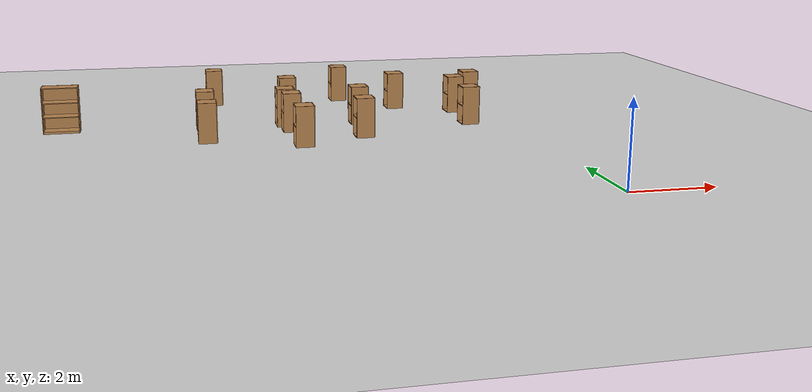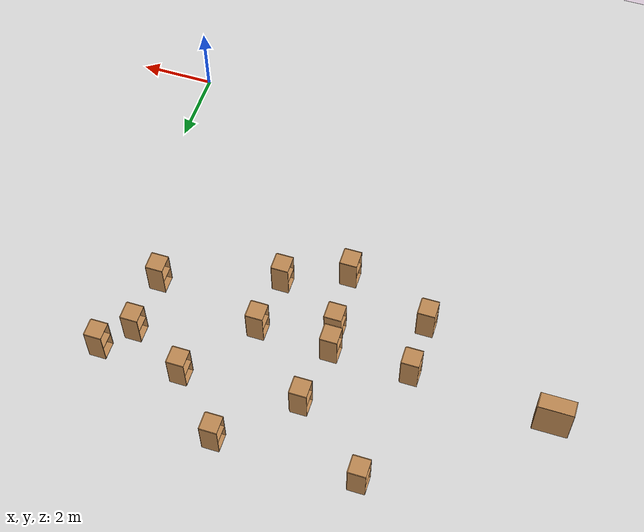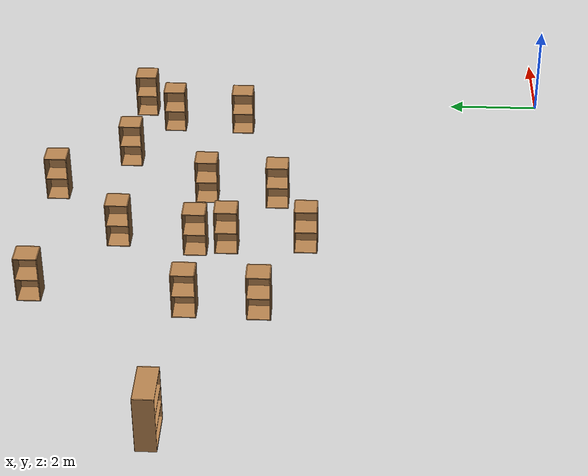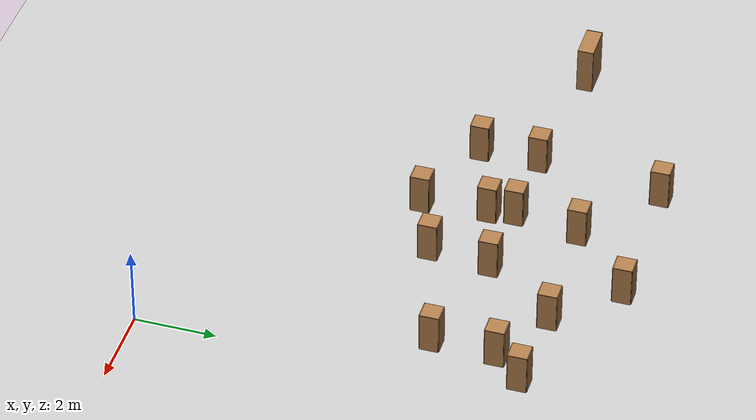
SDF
<sdf version="1.6">
 <world name="default">
  <model name="ground_plane">
   <static>1</static>
   <link name="link">
    <collision name="collision">
     <geometry><plane><normal>0 0 1</normal><size>100 100</size></plane></geometry>
     <surface><friction><ode><mu>100</mu><mu2>50</mu2></ode></friction></surface>
    </collision>
    <visual name="visual">
     <cast_shadows>0</cast_shadows>
     <geometry><plane><normal>0 0 1</normal><size>100 100</size></plane></geometry>
     <material>
      <script><uri>file://media/materials/scripts/gazebo.material</uri><name>Gazebo/Grey</name></script>
     </material>
    </visual>
   </link>
  </model>
  <model name="cabinet_2">
   <static>1</static>
   <link name="cabinet_bottom_plate">
    <inertial>
     <pose>0 0 -1 0 -0 0</pose>
     <inertia><ixx>2.05</ixx><ixy>0</ixy><ixz>0</ixz><iyy>2.05</iyy><iyz>0</iyz><izz>2.05</izz></inertia>
     <mass>25</mass>
    </inertial>
    <collision name="cabinet_bottom_plate_geom">
     <pose>0 0 0.01 0 -0 0</pose>
     <geometry><box><size>0.45 0.45 0.02</size></box></geometry>
    </collision>
    <visual name="cabinet_bottom_plate_geom_visual">
     <pose>0 0 0.01 0 -0 0</pose>
     <geometry><box><size>0.45 0.45 0.02</size></box></geometry>
     <material>
      <script><uri>file://media/materials/scripts/gazebo.material</uri><name>Gazebo/Wood</name></script>
     </material>
    </visual>
    <collision name="cabinet_bottom_plate_geom_cabinet_back_plate">
     <pose>0.235 0 0.51 0 -0 0</pose>
     <geometry><box><size>0.02 0.45 1.02</size></box></geometry>
    </collision>
    <visual name="cabinet_bottom_plate_geom_cabinet_back_plate_visual">
     <pose>0.235 0 0.51 0 -0 0</pose>
     <geometry><box><size>0.02 0.45 1.02</size></box></geometry>
     <material>
      <script><uri>file://media/materials/scripts/gazebo.material</uri><name>Gazebo/Wood</name></script>
     </material>
    </visual>
    <collision name="cabinet_bottom_plate_geom_cabinet_left_plate">
     <pose>0 0.235 0.51 0 -0 0</pose>
     <geometry><box><size>0.45 0.02 1.02</size></box></geometry>
    </collision>
    <visual name="cabinet_bottom_plate_geom_cabinet_left_plate_visual">
     <pose>0 0.235 0.51 0 -0 0</pose>
     <geometry><box><size>0.45 0.02 1.02</size></box></geometry>
     <material>
      <script><uri>file://media/materials/scripts/gazebo.material</uri><name>Gazebo/Wood</name></script>
     </material>
    </visual>
    <collision name="cabinet_bottom_plate_geom_cabinet_middle_plate">
     <pose>0 0 0.51 0 -0 0</pose>
     <geometry><box><size>0.45 0.45 0.02</size></box></geometry>
    </collision>
    <visual name="cabinet_bottom_plate_geom_cabinet_middle_plate_visual">
     <pose>0 0 0.51 0 -0 0</pose>
     <geometry><box><size>0.45 0.45 0.02</size></box></geometry>
     <material>
      <script><uri>file://media/materials/scripts/gazebo.material</uri><name>Gazebo/Wood</name></script>
     </material>
    </visual>
    <collision name="cabinet_bottom_plate_geom_cabinet_right_plate">
     <pose>0 -0.235 0.51 0 -0 0</pose>
     <geometry><box><size>0.45 0.02 1.02</size></box></geometry>
    </collision>
    <visual name="cabinet_bottom_plate_geom_cabinet_right_plate_visual">
     <pose>0 -0.235 0.51 0 -0 0</pose>
     <geometry><box><size>0.45 0.02 1.02</size></box></geometry>
     <material>
      <script><uri>file://media/materials/scripts/gazebo.material</uri><name>Gazebo/Wood</name></script>
     </material>
    </visual>
    <collision name="cabinet_bottom_plate_geom_cabinet_top_plate">
     <pose>0 0 1.01 0 -0 0</pose>
     <geometry><box><size>0.45 0.45 0.02</size></box></geometry>
    </collision>
    <visual name="cabinet_bottom_plate_geom_cabinet_top_plate_visual">
     <pose>0 0 1.01 0 -0 0</pose>
     <geometry><box><size>0.45 0.45 0.02</size></box></geometry>
     <material>
      <script><uri>file://media/materials/scripts/gazebo.material</uri><name>Gazebo/Wood</name></script>
     </material>
    </visual>
   </link>
   <pose>-0.469845 9.15683 0 0 -0 0</pose>
  </model>
  <model name="cabinet_3">
   <static>1</static>
   <link name="cabinet_bottom_plate">
    <inertial>
     <pose>0 0 -1 0 -0 0</pose>
     <inertia><ixx>2.05</ixx><ixy>0</ixy><ixz>0</ixz><iyy>2.05</iyy><iyz>0</iyz><izz>2.05</izz></inertia>
     <mass>25</mass>
    </inertial>
    <collision name="cabinet_bottom_plate_geom">
     <pose>0 0 0.01 0 -0 0</pose>
     <geometry><box><size>0.45 0.45 0.02</size></box></geometry>
    </collision>
    <visual name="cabinet_bottom_plate_geom_visual">
     <pose>0 0 0.01 0 -0 0</pose>
     <geometry><box><size>0.45 0.45 0.02</size></box></geometry>
     <material>
      <script><uri>file://media/materials/scripts/gazebo.material</uri><name>Gazebo/Wood</name></script>
     </material>
    </visual>
    <collision name="cabinet_bottom_plate_geom_cabinet_back_plate">
     <pose>0.235 0 0.51 0 -0 0</pose>
     <geometry><box><size>0.02 0.45 1.02</size></box></geometry>
    </collision>
    <visual name="cabinet_bottom_plate_geom_cabinet_back_plate_visual">
     <pose>0.235 0 0.51 0 -0 0</pose>
     <geometry><box><size>0.02 0.45 1.02</size></box></geometry>
     <material>
      <script><uri>file://media/materials/scripts/gazebo.material</uri><name>Gazebo/Wood</name></script>
     </material>
    </visual>
    <collision name="cabinet_bottom_plate_geom_cabinet_left_plate">
     <pose>0 0.235 0.51 0 -0 0</pose>
     <geometry><box><size>0.45 0.02 1.02</size></box></geometry>
    </collision>
    <visual name="cabinet_bottom_plate_geom_cabinet_left_plate_visual">
     <pose>0 0.235 0.51 0 -0 0</pose>
     <geometry><box><size>0.45 0.02 1.02</size></box></geometry>
     <material>
      <script><uri>file://media/materials/scripts/gazebo.material</uri><name>Gazebo/Wood</name></script>
     </material>
    </visual>
    <collision name="cabinet_bottom_plate_geom_cabinet_middle_plate">
     <pose>0 0 0.51 0 -0 0</pose>
     <geometry><box><size>0.45 0.45 0.02</size></box></geometry>
    </collision>
    <visual name="cabinet_bottom_plate_geom_cabinet_middle_plate_visual">
     <pose>0 0 0.51 0 -0 0</pose>
     <geometry><box><size>0.45 0.45 0.02</size></box></geometry>
     <material>
      <script><uri>file://media/materials/scripts/gazebo.material</uri><name>Gazebo/Wood</name></script>
     </material>
    </visual>
    <collision name="cabinet_bottom_plate_geom_cabinet_right_plate">
     <pose>0 -0.235 0.51 0 -0 0</pose>
     <geometry><box><size>0.45 0.02 1.02</size></box></geometry>
    </collision>
    <visual name="cabinet_bottom_plate_geom_cabinet_right_plate_visual">
     <pose>0 -0.235 0.51 0 -0 0</pose>
     <geometry><box><size>0.45 0.02 1.02</size></box></geometry>
     <material>
      <script><uri>file://media/materials/scripts/gazebo.material</uri><name>Gazebo/Wood</name></script>
     </material>
    </visual>
    <collision name="cabinet_bottom_plate_geom_cabinet_top_plate">
     <pose>0 0 1.01 0 -0 0</pose>
     <geometry><box><size>0.45 0.45 0.02</size></box></geometry>
    </collision>
    <visual name="cabinet_bottom_plate_geom_cabinet_top_plate_visual">
     <pose>0 0 1.01 0 -0 0</pose>
     <geometry><box><size>0.45 0.45 0.02</size></box></geometry>
     <material>
      <script><uri>file://media/materials/scripts/gazebo.material</uri><name>Gazebo/Wood</name></script>
     </material>
    </visual>
   </link>
   <pose>-2.69733 9.26141 0 0 -0 0</pose>
  </model>
  <model name="cabinet_4">
   <static>1</static>
   <link name="cabinet_bottom_plate">
    <inertial>
     <pose>0 0 -1 0 -0 0</pose>
     <inertia><ixx>2.05</ixx><ixy>0</ixy><ixz>0</ixz><iyy>2.05</iyy><iyz>0</iyz><izz>2.05</izz></inertia>
     <mass>25</mass>
    </inertial>
    <collision name="cabinet_bottom_plate_geom">
     <pose>0 0 0.01 0 -0 0</pose>
     <geometry><box><size>0.45 0.45 0.02</size></box></geometry>
    </collision>
    <visual name="cabinet_bottom_plate_geom_visual">
     <pose>0 0 0.01 0 -0 0</pose>
     <geometry><box><size>0.45 0.45 0.02</size></box></geometry>
     <material>
      <script><uri>file://media/materials/scripts/gazebo.material</uri><name>Gazebo/Wood</name></script>
     </material>
    </visual>
    <collision name="cabinet_bottom_plate_geom_cabinet_back_plate">
     <pose>0.235 0 0.51 0 -0 0</pose>
     <geometry><box><size>0.02 0.45 1.02</size></box></geometry>
    </collision>
    <visual name="cabinet_bottom_plate_geom_cabinet_back_plate_visual">
     <pose>0.235 0 0.51 0 -0 0</pose>
     <geometry><box><size>0.02 0.45 1.02</size></box></geometry>
     <material>
      <script><uri>file://media/materials/scripts/gazebo.material</uri><name>Gazebo/Wood</name></script>
     </material>
    </visual>
    <collision name="cabinet_bottom_plate_geom_cabinet_left_plate">
     <pose>0 0.235 0.51 0 -0 0</pose>
     <geometry><box><size>0.45 0.02 1.02</size></box></geometry>
    </collision>
    <visual name="cabinet_bottom_plate_geom_cabinet_left_plate_visual">
     <pose>0 0.235 0.51 0 -0 0</pose>
     <geometry><box><size>0.45 0.02 1.02</size></box></geometry>
     <material>
      <script><uri>file://media/materials/scripts/gazebo.material</uri><name>Gazebo/Wood</name></script>
     </material>
    </visual>
    <collision name="cabinet_bottom_plate_geom_cabinet_middle_plate">
     <pose>0 0 0.51 0 -0 0</pose>
     <geometry><box><size>0.45 0.45 0.02</size></box></geometry>
    </collision>
    <visual name="cabinet_bottom_plate_geom_cabinet_middle_plate_visual">
     <pose>0 0 0.51 0 -0 0</pose>
     <geometry><box><size>0.45 0.45 0.02</size></box></geometry>
     <material>
      <script><uri>file://media/materials/scripts/gazebo.material</uri><name>Gazebo/Wood</name></script>
     </material>
    </visual>
    <collision name="cabinet_bottom_plate_geom_cabinet_right_plate">
     <pose>0 -0.235 0.51 0 -0 0</pose>
     <geometry><box><size>0.45 0.02 1.02</size></box></geometry>
    </collision>
    <visual name="cabinet_bottom_plate_geom_cabinet_right_plate_visual">
     <pose>0 -0.235 0.51 0 -0 0</pose>
     <geometry><box><size>0.45 0.02 1.02</size></box></geometry>
     <material>
      <script><uri>file://media/materials/scripts/gazebo.material</uri><name>Gazebo/Wood</name></script>
     </material>
    </visual>
    <collision name="cabinet_bottom_plate_geom_cabinet_top_plate">
     <pose>0 0 1.01 0 -0 0</pose>
     <geometry><box><size>0.45 0.45 0.02</size></box></geometry>
    </collision>
    <visual name="cabinet_bottom_plate_geom_cabinet_top_plate_visual">
     <pose>0 0 1.01 0 -0 0</pose>
     <geometry><box><size>0.45 0.45 0.02</size></box></geometry>
     <material>
      <script><uri>file://media/materials/scripts/gazebo.material</uri><name>Gazebo/Wood</name></script>
     </material>
    </visual>
   </link>
   <pose>-4.09247 10.6947 0 0 -0 0</pose>
  </model>
  <model name="cabinet_5">
   <static>1</static>
   <link name="cabinet_bottom_plate">
    <inertial>
     <pose>0 0 -1 0 -0 0</pose>
     <inertia><ixx>2.05</ixx><ixy>0</ixy><ixz>0</ixz><iyy>2.05</iyy><iyz>0</iyz><izz>2.05</izz></inertia>
     <mass>25</mass>
    </inertial>
    <collision name="cabinet_bottom_plate_geom">
     <pose>0 0 0.01 0 -0 0</pose>
     <geometry><box><size>0.45 0.45 0.02</size></box></geometry>
    </collision>
    <visual name="cabinet_bottom_plate_geom_visual">
     <pose>0 0 0.01 0 -0 0</pose>
     <geometry><box><size>0.45 0.45 0.02</size></box></geometry>
     <material>
      <script><uri>file://media/materials/scripts/gazebo.material</uri><name>Gazebo/Wood</name></script>
     </material>
    </visual>
    <collision name="cabinet_bottom_plate_geom_cabinet_back_plate">
     <pose>0.235 0 0.51 0 -0 0</pose>
     <geometry><box><size>0.02 0.45 1.02</size></box></geometry>
    </collision>
    <visual name="cabinet_bottom_plate_geom_cabinet_back_plate_visual">
     <pose>0.235 0 0.51 0 -0 0</pose>
     <geometry><box><size>0.02 0.45 1.02</size></box></geometry>
     <material>
      <script><uri>file://media/materials/scripts/gazebo.material</uri><name>Gazebo/Wood</name></script>
     </material>
    </visual>
    <collision name="cabinet_bottom_plate_geom_cabinet_left_plate">
     <pose>0 0.235 0.51 0 -0 0</pose>
     <geometry><box><size>0.45 0.02 1.02</size></box></geometry>
    </collision>
    <visual name="cabinet_bottom_plate_geom_cabinet_left_plate_visual">
     <pose>0 0.235 0.51 0 -0 0</pose>
     <geometry><box><size>0.45 0.02 1.02</size></box></geometry>
     <material>
      <script><uri>file://media/materials/scripts/gazebo.material</uri><name>Gazebo/Wood</name></script>
     </material>
    </visual>
    <collision name="cabinet_bottom_plate_geom_cabinet_middle_plate">
     <pose>0 0 0.51 0 -0 0</pose>
     <geometry><box><size>0.45 0.45 0.02</size></box></geometry>
    </collision>
    <visual name="cabinet_bottom_plate_geom_cabinet_middle_plate_visual">
     <pose>0 0 0.51 0 -0 0</pose>
     <geometry><box><size>0.45 0.45 0.02</size></box></geometry>
     <material>
      <script><uri>file://media/materials/scripts/gazebo.material</uri><name>Gazebo/Wood</name></script>
     </material>
    </visual>
    <collision name="cabinet_bottom_plate_geom_cabinet_right_plate">
     <pose>0 -0.235 0.51 0 -0 0</pose>
     <geometry><box><size>0.45 0.02 1.02</size></box></geometry>
    </collision>
    <visual name="cabinet_bottom_plate_geom_cabinet_right_plate_visual">
     <pose>0 -0.235 0.51 0 -0 0</pose>
     <geometry><box><size>0.45 0.02 1.02</size></box></geometry>
     <material>
      <script><uri>file://media/materials/scripts/gazebo.material</uri><name>Gazebo/Wood</name></script>
     </material>
    </visual>
    <collision name="cabinet_bottom_plate_geom_cabinet_top_plate">
     <pose>0 0 1.01 0 -0 0</pose>
     <geometry><box><size>0.45 0.45 0.02</size></box></geometry>
    </collision>
    <visual name="cabinet_bottom_plate_geom_cabinet_top_plate_visual">
     <pose>0 0 1.01 0 -0 0</pose>
     <geometry><box><size>0.45 0.45 0.02</size></box></geometry>
     <material>
      <script><uri>file://media/materials/scripts/gazebo.material</uri><name>Gazebo/Wood</name></script>
     </material>
    </visual>
   </link>
   <pose>-5.83195 9.14808 0 0 -0 0</pose>
  </model>
  <model name="cabinet_6">
   <static>1</static>
   <link name="cabinet_bottom_plate">
    <inertial>
     <pose>0 0 -1 0 -0 0</pose>
     <inertia><ixx>2.05</ixx><ixy>0</ixy><ixz>0</ixz><iyy>2.05</iyy><iyz>0</iyz><izz>2.05</izz></inertia>
     <mass>25</mass>
    </inertial>
    <collision name="cabinet_bottom_plate_geom">
     <pose>0 0 0.01 0 -0 0</pose>
     <geometry><box><size>0.45 0.45 0.02</size></box></geometry>
    </collision>
    <visual name="cabinet_bottom_plate_geom_visual">
     <pose>0 0 0.01 0 -0 0</pose>
     <geometry><box><size>0.45 0.45 0.02</size></box></geometry>
     <material>
      <script><uri>file://media/materials/scripts/gazebo.material</uri><name>Gazebo/Wood</name></script>
     </material>
    </visual>
    <collision name="cabinet_bottom_plate_geom_cabinet_back_plate">
     <pose>0.235 0 0.51 0 -0 0</pose>
     <geometry><box><size>0.02 0.45 1.02</size></box></geometry>
    </collision>
    <visual name="cabinet_bottom_plate_geom_cabinet_back_plate_visual">
     <pose>0.235 0 0.51 0 -0 0</pose>
     <geometry><box><size>0.02 0.45 1.02</size></box></geometry>
     <material>
      <script><uri>file://media/materials/scripts/gazebo.material</uri><name>Gazebo/Wood</name></script>
     </material>
    </visual>
    <collision name="cabinet_bottom_plate_geom_cabinet_left_plate">
     <pose>0 0.235 0.51 0 -0 0</pose>
     <geometry><box><size>0.45 0.02 1.02</size></box></geometry>
    </collision>
    <visual name="cabinet_bottom_plate_geom_cabinet_left_plate_visual">
     <pose>0 0.235 0.51 0 -0 0</pose>
     <geometry><box><size>0.45 0.02 1.02</size></box></geometry>
     <material>
      <script><uri>file://media/materials/scripts/gazebo.material</uri><name>Gazebo/Wood</name></script>
     </material>
    </visual>
    <collision name="cabinet_bottom_plate_geom_cabinet_middle_plate">
     <pose>0 0 0.51 0 -0 0</pose>
     <geometry><box><size>0.45 0.45 0.02</size></box></geometry>
    </collision>
    <visual name="cabinet_bottom_plate_geom_cabinet_middle_plate_visual">
     <pose>0 0 0.51 0 -0 0</pose>
     <geometry><box><size>0.45 0.45 0.02</size></box></geometry>
     <material>
      <script><uri>file://media/materials/scripts/gazebo.material</uri><name>Gazebo/Wood</name></script>
     </material>
    </visual>
    <collision name="cabinet_bottom_plate_geom_cabinet_right_plate">
     <pose>0 -0.235 0.51 0 -0 0</pose>
     <geometry><box><size>0.45 0.02 1.02</size></box></geometry>
    </collision>
    <visual name="cabinet_bottom_plate_geom_cabinet_right_plate_visual">
     <pose>0 -0.235 0.51 0 -0 0</pose>
     <geometry><box><size>0.45 0.02 1.02</size></box></geometry>
     <material>
      <script><uri>file://media/materials/scripts/gazebo.material</uri><name>Gazebo/Wood</name></script>
     </material>
    </visual>
    <collision name="cabinet_bottom_plate_geom_cabinet_top_plate">
     <pose>0 0 1.01 0 -0 0</pose>
     <geometry><box><size>0.45 0.45 0.02</size></box></geometry>
    </collision>
    <visual name="cabinet_bottom_plate_geom_cabinet_top_plate_visual">
     <pose>0 0 1.01 0 -0 0</pose>
     <geometry><box><size>0.45 0.45 0.02</size></box></geometry>
     <material>
      <script><uri>file://media/materials/scripts/gazebo.material</uri><name>Gazebo/Wood</name></script>
     </material>
    </visual>
   </link>
   <pose>-7.78731 10.6921 0 0 -0 0</pose>
  </model>
  <model name="cabinet_11">
   <static>1</static>
   <link name="cabinet_bottom_plate">
    <inertial>
     <pose>0 0 -1 0 -0 0</pose>
     <inertia><ixx>2.05</ixx><ixy>0</ixy><ixz>0</ixz><iyy>2.05</iyy><iyz>0</iyz><izz>2.05</izz></inertia>
     <mass>25</mass>
    </inertial>
    <collision name="cabinet_bottom_plate_geom">
     <pose>0 0 0.01 0 -0 0</pose>
     <geometry><box><size>0.45 0.45 0.02</size></box></geometry>
    </collision>
    <visual name="cabinet_bottom_plate_geom_visual">
     <pose>0 0 0.01 0 -0 0</pose>
     <geometry><box><size>0.45 0.45 0.02</size></box></geometry>
     <material>
      <script><uri>file://media/materials/scripts/gazebo.material</uri><name>Gazebo/Wood</name></script>
     </material>
    </visual>
    <collision name="cabinet_bottom_plate_geom_cabinet_back_plate">
     <pose>0.235 0 0.51 0 -0 0</pose>
     <geometry><box><size>0.02 0.45 1.02</size></box></geometry>
    </collision>
    <visual name="cabinet_bottom_plate_geom_cabinet_back_plate_visual">
     <pose>0.235 0 0.51 0 -0 0</pose>
     <geometry><box><size>0.02 0.45 1.02</size></box></geometry>
     <material>
      <script><uri>file://media/materials/scripts/gazebo.material</uri><name>Gazebo/Wood</name></script>
     </material>
    </visual>
    <collision name="cabinet_bottom_plate_geom_cabinet_left_plate">
     <pose>0 0.235 0.51 0 -0 0</pose>
     <geometry><box><size>0.45 0.02 1.02</size></box></geometry>
    </collision>
    <visual name="cabinet_bottom_plate_geom_cabinet_left_plate_visual">
     <pose>0 0.235 0.51 0 -0 0</pose>
     <geometry><box><size>0.45 0.02 1.02</size></box></geometry>
     <material>
      <script><uri>file://media/materials/scripts/gazebo.material</uri><name>Gazebo/Wood</name></script>
     </material>
    </visual>
    <collision name="cabinet_bottom_plate_geom_cabinet_middle_plate">
     <pose>0 0 0.51 0 -0 0</pose>
     <geometry><box><size>0.45 0.45 0.02</size></box></geometry>
    </collision>
    <visual name="cabinet_bottom_plate_geom_cabinet_middle_plate_visual">
     <pose>0 0 0.51 0 -0 0</pose>
     <geometry><box><size>0.45 0.45 0.02</size></box></geometry>
     <material>
      <script><uri>file://media/materials/scripts/gazebo.material</uri><name>Gazebo/Wood</name></script>
     </material>
    </visual>
    <collision name="cabinet_bottom_plate_geom_cabinet_right_plate">
     <pose>0 -0.235 0.51 0 -0 0</pose>
     <geometry><box><size>0.45 0.02 1.02</size></box></geometry>
    </collision>
    <visual name="cabinet_bottom_plate_geom_cabinet_right_plate_visual">
     <pose>0 -0.235 0.51 0 -0 0</pose>
     <geometry><box><size>0.45 0.02 1.02</size></box></geometry>
     <material>
      <script><uri>file://media/materials/scripts/gazebo.material</uri><name>Gazebo/Wood</name></script>
     </material>
    </visual>
    <collision name="cabinet_bottom_plate_geom_cabinet_top_plate">
     <pose>0 0 1.01 0 -0 0</pose>
     <geometry><box><size>0.45 0.45 0.02</size></box></geometry>
    </collision>
    <visual name="cabinet_bottom_plate_geom_cabinet_top_plate_visual">
     <pose>0 0 1.01 0 -0 0</pose>
     <geometry><box><size>0.45 0.45 0.02</size></box></geometry>
     <material>
      <script><uri>file://media/materials/scripts/gazebo.material</uri><name>Gazebo/Wood</name></script>
     </material>
    </visual>
   </link>
   <pose>-1.14087 8.42958 0 0 -0 0</pose>
  </model>
  <model name="cabinet_12">
   <static>1</static>
   <link name="cabinet_bottom_plate">
    <inertial>
     <pose>0 0 -1 0 -0 0</pose>
     <inertia><ixx>2.05</ixx><ixy>0</ixy><ixz>0</ixz><iyy>2.05</iyy><iyz>0</iyz><izz>2.05</izz></inertia>
     <mass>25</mass>
    </inertial>
    <collision name="cabinet_bottom_plate_geom">
     <pose>0 0 0.01 0 -0 0</pose>
     <geometry><box><size>0.45 0.45 0.02</size></box></geometry>
    </collision>
    <visual name="cabinet_bottom_plate_geom_visual">
     <pose>0 0 0.01 0 -0 0</pose>
     <geometry><box><size>0.45 0.45 0.02</size></box></geometry>
     <material>
      <script><uri>file://media/materials/scripts/gazebo.material</uri><name>Gazebo/Wood</name></script>
     </material>
    </visual>
    <collision name="cabinet_bottom_plate_geom_cabinet_back_plate">
     <pose>0.235 0 0.51 0 -0 0</pose>
     <geometry><box><size>0.02 0.45 1.02</size></box></geometry>
    </collision>
    <visual name="cabinet_bottom_plate_geom_cabinet_back_plate_visual">
     <pose>0.235 0 0.51 0 -0 0</pose>
     <geometry><box><size>0.02 0.45 1.02</size></box></geometry>
     <material>
      <script><uri>file://media/materials/scripts/gazebo.material</uri><name>Gazebo/Wood</name></script>
     </material>
    </visual>
    <collision name="cabinet_bottom_plate_geom_cabinet_left_plate">
     <pose>0 0.235 0.51 0 -0 0</pose>
     <geometry><box><size>0.45 0.02 1.02</size></box></geometry>
    </collision>
    <visual name="cabinet_bottom_plate_geom_cabinet_left_plate_visual">
     <pose>0 0.235 0.51 0 -0 0</pose>
     <geometry><box><size>0.45 0.02 1.02</size></box></geometry>
     <material>
      <script><uri>file://media/materials/scripts/gazebo.material</uri><name>Gazebo/Wood</name></script>
     </material>
    </visual>
    <collision name="cabinet_bottom_plate_geom_cabinet_middle_plate">
     <pose>0 0 0.51 0 -0 0</pose>
     <geometry><box><size>0.45 0.45 0.02</size></box></geometry>
    </collision>
    <visual name="cabinet_bottom_plate_geom_cabinet_middle_plate_visual">
     <pose>0 0 0.51 0 -0 0</pose>
     <geometry><box><size>0.45 0.45 0.02</size></box></geometry>
     <material>
      <script><uri>file://media/materials/scripts/gazebo.material</uri><name>Gazebo/Wood</name></script>
     </material>
    </visual>
    <collision name="cabinet_bottom_plate_geom_cabinet_right_plate">
     <pose>0 -0.235 0.51 0 -0 0</pose>
     <geometry><box><size>0.45 0.02 1.02</size></box></geometry>
    </collision>
    <visual name="cabinet_bottom_plate_geom_cabinet_right_plate_visual">
     <pose>0 -0.235 0.51 0 -0 0</pose>
     <geometry><box><size>0.45 0.02 1.02</size></box></geometry>
     <material>
      <script><uri>file://media/materials/scripts/gazebo.material</uri><name>Gazebo/Wood</name></script>
     </material>
    </visual>
    <collision name="cabinet_bottom_plate_geom_cabinet_top_plate">
     <pose>0 0 1.01 0 -0 0</pose>
     <geometry><box><size>0.45 0.45 0.02</size></box></geometry>
    </collision>
    <visual name="cabinet_bottom_plate_geom_cabinet_top_plate_visual">
     <pose>0 0 1.01 0 -0 0</pose>
     <geometry><box><size>0.45 0.45 0.02</size></box></geometry>
     <material>
      <script><uri>file://media/materials/scripts/gazebo.material</uri><name>Gazebo/Wood</name></script>
     </material>
    </visual>
   </link>
   <pose>-4.11624 7.44312 0 0 -0 0</pose>
  </model>
  <model name="cabinet_13">
   <static>1</static>
   <link name="cabinet_bottom_plate">
    <inertial>
     <pose>0 0 -1 0 -0 0</pose>
     <inertia><ixx>2.05</ixx><ixy>0</ixy><ixz>0</ixz><iyy>2.05</iyy><iyz>0</iyz><izz>2.05</izz></inertia>
     <mass>25</mass>
    </inertial>
    <collision name="cabinet_bottom_plate_geom">
     <pose>0 0 0.01 0 -0 0</pose>
     <geometry><box><size>0.45 0.45 0.02</size></box></geometry>
    </collision>
    <visual name="cabinet_bottom_plate_geom_visual">
     <pose>0 0 0.01 0 -0 0</pose>
     <geometry><box><size>0.45 0.45 0.02</size></box></geometry>
     <material>
      <script><uri>file://media/materials/scripts/gazebo.material</uri><name>Gazebo/Wood</name></script>
     </material>
    </visual>
    <collision name="cabinet_bottom_plate_geom_cabinet_back_plate">
     <pose>0.235 0 0.51 0 -0 0</pose>
     <geometry><box><size>0.02 0.45 1.02</size></box></geometry>
    </collision>
    <visual name="cabinet_bottom_plate_geom_cabinet_back_plate_visual">
     <pose>0.235 0 0.51 0 -0 0</pose>
     <geometry><box><size>0.02 0.45 1.02</size></box></geometry>
     <material>
      <script><uri>file://media/materials/scripts/gazebo.material</uri><name>Gazebo/Wood</name></script>
     </material>
    </visual>
    <collision name="cabinet_bottom_plate_geom_cabinet_left_plate">
     <pose>0 0.235 0.51 0 -0 0</pose>
     <geometry><box><size>0.45 0.02 1.02</size></box></geometry>
    </collision>
    <visual name="cabinet_bottom_plate_geom_cabinet_left_plate_visual">
     <pose>0 0.235 0.51 0 -0 0</pose>
     <geometry><box><size>0.45 0.02 1.02</size></box></geometry>
     <material>
      <script><uri>file://media/materials/scripts/gazebo.material</uri><name>Gazebo/Wood</name></script>
     </material>
    </visual>
    <collision name="cabinet_bottom_plate_geom_cabinet_middle_plate">
     <pose>0 0 0.51 0 -0 0</pose>
     <geometry><box><size>0.45 0.45 0.02</size></box></geometry>
    </collision>
    <visual name="cabinet_bottom_plate_geom_cabinet_middle_plate_visual">
     <pose>0 0 0.51 0 -0 0</pose>
     <geometry><box><size>0.45 0.45 0.02</size></box></geometry>
     <material>
      <script><uri>file://media/materials/scripts/gazebo.material</uri><name>Gazebo/Wood</name></script>
     </material>
    </visual>
    <collision name="cabinet_bottom_plate_geom_cabinet_right_plate">
     <pose>0 -0.235 0.51 0 -0 0</pose>
     <geometry><box><size>0.45 0.02 1.02</size></box></geometry>
    </collision>
    <visual name="cabinet_bottom_plate_geom_cabinet_right_plate_visual">
     <pose>0 -0.235 0.51 0 -0 0</pose>
     <geometry><box><size>0.45 0.02 1.02</size></box></geometry>
     <material>
      <script><uri>file://media/materials/scripts/gazebo.material</uri><name>Gazebo/Wood</name></script>
     </material>
    </visual>
    <collision name="cabinet_bottom_plate_geom_cabinet_top_plate">
     <pose>0 0 1.01 0 -0 0</pose>
     <geometry><box><size>0.45 0.45 0.02</size></box></geometry>
    </collision>
    <visual name="cabinet_bottom_plate_geom_cabinet_top_plate_visual">
     <pose>0 0 1.01 0 -0 0</pose>
     <geometry><box><size>0.45 0.45 0.02</size></box></geometry>
     <material>
      <script><uri>file://media/materials/scripts/gazebo.material</uri><name>Gazebo/Wood</name></script>
     </material>
    </visual>
   </link>
   <pose>-6.09826 7.52006 0 0 -0 0</pose>
  </model>
  <model name="cabinet_14">
   <static>1</static>
   <link name="cabinet_bottom_plate">
    <inertial>
     <pose>0 0 -1 0 -0 0</pose>
     <inertia><ixx>2.05</ixx><ixy>0</ixy><ixz>0</ixz><iyy>2.05</iyy><iyz>0</iyz><izz>2.05</izz></inertia>
     <mass>25</mass>
    </inertial>
    <collision name="cabinet_bottom_plate_geom">
     <pose>0 0 0.01 0 -0 0</pose>
     <geometry><box><size>0.45 0.45 0.02</size></box></geometry>
    </collision>
    <visual name="cabinet_bottom_plate_geom_visual">
     <pose>0 0 0.01 0 -0 0</pose>
     <geometry><box><size>0.45 0.45 0.02</size></box></geometry>
     <material>
      <script><uri>file://media/materials/scripts/gazebo.material</uri><name>Gazebo/Wood</name></script>
     </material>
    </visual>
    <collision name="cabinet_bottom_plate_geom_cabinet_back_plate">
     <pose>0.235 0 0.51 0 -0 0</pose>
     <geometry><box><size>0.02 0.45 1.02</size></box></geometry>
    </collision>
    <visual name="cabinet_bottom_plate_geom_cabinet_back_plate_visual">
     <pose>0.235 0 0.51 0 -0 0</pose>
     <geometry><box><size>0.02 0.45 1.02</size></box></geometry>
     <material>
      <script><uri>file://media/materials/scripts/gazebo.material</uri><name>Gazebo/Wood</name></script>
     </material>
    </visual>
    <collision name="cabinet_bottom_plate_geom_cabinet_left_plate">
     <pose>0 0.235 0.51 0 -0 0</pose>
     <geometry><box><size>0.45 0.02 1.02</size></box></geometry>
    </collision>
    <visual name="cabinet_bottom_plate_geom_cabinet_left_plate_visual">
     <pose>0 0.235 0.51 0 -0 0</pose>
     <geometry><box><size>0.45 0.02 1.02</size></box></geometry>
     <material>
      <script><uri>file://media/materials/scripts/gazebo.material</uri><name>Gazebo/Wood</name></script>
     </material>
    </visual>
    <collision name="cabinet_bottom_plate_geom_cabinet_middle_plate">
     <pose>0 0 0.51 0 -0 0</pose>
     <geometry><box><size>0.45 0.45 0.02</size></box></geometry>
    </collision>
    <visual name="cabinet_bottom_plate_geom_cabinet_middle_plate_visual">
     <pose>0 0 0.51 0 -0 0</pose>
     <geometry><box><size>0.45 0.45 0.02</size></box></geometry>
     <material>
      <script><uri>file://media/materials/scripts/gazebo.material</uri><name>Gazebo/Wood</name></script>
     </material>
    </visual>
    <collision name="cabinet_bottom_plate_geom_cabinet_right_plate">
     <pose>0 -0.235 0.51 0 -0 0</pose>
     <geometry><box><size>0.45 0.02 1.02</size></box></geometry>
    </collision>
    <visual name="cabinet_bottom_plate_geom_cabinet_right_plate_visual">
     <pose>0 -0.235 0.51 0 -0 0</pose>
     <geometry><box><size>0.45 0.02 1.02</size></box></geometry>
     <material>
      <script><uri>file://media/materials/scripts/gazebo.material</uri><name>Gazebo/Wood</name></script>
     </material>
    </visual>
    <collision name="cabinet_bottom_plate_geom_cabinet_top_plate">
     <pose>0 0 1.01 0 -0 0</pose>
     <geometry><box><size>0.45 0.45 0.02</size></box></geometry>
    </collision>
    <visual name="cabinet_bottom_plate_geom_cabinet_top_plate_visual">
     <pose>0 0 1.01 0 -0 0</pose>
     <geometry><box><size>0.45 0.45 0.02</size></box></geometry>
     <material>
      <script><uri>file://media/materials/scripts/gazebo.material</uri><name>Gazebo/Wood</name></script>
     </material>
    </visual>
   </link>
   <pose>-8.20424 7.5443 0 0 -0 0</pose>
  </model>
  <model name="cabinet_19">
   <static>1</static>
   <link name="cabinet_bottom_plate">
    <inertial>
     <pose>0 0 -1 0 -0 0</pose>
     <inertia><ixx>2.05</ixx><ixy>0</ixy><ixz>0</ixz><iyy>2.05</iyy><iyz>0</iyz><izz>2.05</izz></inertia>
     <mass>25</mass>
    </inertial>
    <collision name="cabinet_bottom_plate_geom">
     <pose>0 0 0.01 0 -0 0</pose>
     <geometry><box><size>0.45 0.45 0.02</size></box></geometry>
    </collision>
    <visual name="cabinet_bottom_plate_geom_visual">
     <pose>0 0 0.01 0 -0 0</pose>
     <geometry><box><size>0.45 0.45 0.02</size></box></geometry>
     <material>
      <script><uri>file://media/materials/scripts/gazebo.material</uri><name>Gazebo/Wood</name></script>
     </material>
    </visual>
    <collision name="cabinet_bottom_plate_geom_cabinet_back_plate">
     <pose>0.235 0 0.51 0 -0 0</pose>
     <geometry><box><size>0.02 0.45 1.02</size></box></geometry>
    </collision>
    <visual name="cabinet_bottom_plate_geom_cabinet_back_plate_visual">
     <pose>0.235 0 0.51 0 -0 0</pose>
     <geometry><box><size>0.02 0.45 1.02</size></box></geometry>
     <material>
      <script><uri>file://media/materials/scripts/gazebo.material</uri><name>Gazebo/Wood</name></script>
     </material>
    </visual>
    <collision name="cabinet_bottom_plate_geom_cabinet_left_plate">
     <pose>0 0.235 0.51 0 -0 0</pose>
     <geometry><box><size>0.45 0.02 1.02</size></box></geometry>
    </collision>
    <visual name="cabinet_bottom_plate_geom_cabinet_left_plate_visual">
     <pose>0 0.235 0.51 0 -0 0</pose>
     <geometry><box><size>0.45 0.02 1.02</size></box></geometry>
     <material>
      <script><uri>file://media/materials/scripts/gazebo.material</uri><name>Gazebo/Wood</name></script>
     </material>
    </visual>
    <collision name="cabinet_bottom_plate_geom_cabinet_middle_plate">
     <pose>0 0 0.51 0 -0 0</pose>
     <geometry><box><size>0.45 0.45 0.02</size></box></geometry>
    </collision>
    <visual name="cabinet_bottom_plate_geom_cabinet_middle_plate_visual">
     <pose>0 0 0.51 0 -0 0</pose>
     <geometry><box><size>0.45 0.45 0.02</size></box></geometry>
     <material>
      <script><uri>file://media/materials/scripts/gazebo.material</uri><name>Gazebo/Wood</name></script>
     </material>
    </visual>
    <collision name="cabinet_bottom_plate_geom_cabinet_right_plate">
     <pose>0 -0.235 0.51 0 -0 0</pose>
     <geometry><box><size>0.45 0.02 1.02</size></box></geometry>
    </collision>
    <visual name="cabinet_bottom_plate_geom_cabinet_right_plate_visual">
     <pose>0 -0.235 0.51 0 -0 0</pose>
     <geometry><box><size>0.45 0.02 1.02</size></box></geometry>
     <material>
      <script><uri>file://media/materials/scripts/gazebo.material</uri><name>Gazebo/Wood</name></script>
     </material>
    </visual>
    <collision name="cabinet_bottom_plate_geom_cabinet_top_plate">
     <pose>0 0 1.01 0 -0 0</pose>
     <geometry><box><size>0.45 0.45 0.02</size></box></geometry>
    </collision>
    <visual name="cabinet_bottom_plate_geom_cabinet_top_plate_visual">
     <pose>0 0 1.01 0 -0 0</pose>
     <geometry><box><size>0.45 0.45 0.02</size></box></geometry>
     <material>
      <script><uri>file://media/materials/scripts/gazebo.material</uri><name>Gazebo/Wood</name></script>
     </material>
    </visual>
   </link>
   <pose>-1.19574 6.85792 0 0 -0 0</pose>
  </model>
  <model name="cabinet_20">
   <static>1</static>
   <link name="cabinet_bottom_plate">
    <inertial>
     <pose>0 0 -1 0 -0 0</pose>
     <inertia><ixx>2.05</ixx><ixy>0</ixy><ixz>0</ixz><iyy>2.05</iyy><iyz>0</iyz><izz>2.05</izz></inertia>
     <mass>25</mass>
    </inertial>
    <collision name="cabinet_bottom_plate_geom">
     <pose>0 0 0.01 0 -0 0</pose>
     <geometry><box><size>0.45 0.45 0.02</size></box></geometry>
    </collision>
    <visual name="cabinet_bottom_plate_geom_visual">
     <pose>0 0 0.01 0 -0 0</pose>
     <geometry><box><size>0.45 0.45 0.02</size></box></geometry>
     <material>
      <script><uri>file://media/materials/scripts/gazebo.material</uri><name>Gazebo/Wood</name></script>
     </material>
    </visual>
    <collision name="cabinet_bottom_plate_geom_cabinet_back_plate">
     <pose>0.235 0 0.51 0 -0 0</pose>
     <geometry><box><size>0.02 0.45 1.02</size></box></geometry>
    </collision>
    <visual name="cabinet_bottom_plate_geom_cabinet_back_plate_visual">
     <pose>0.235 0 0.51 0 -0 0</pose>
     <geometry><box><size>0.02 0.45 1.02</size></box></geometry>
     <material>
      <script><uri>file://media/materials/scripts/gazebo.material</uri><name>Gazebo/Wood</name></script>
     </material>
    </visual>
    <collision name="cabinet_bottom_plate_geom_cabinet_left_plate">
     <pose>0 0.235 0.51 0 -0 0</pose>
     <geometry><box><size>0.45 0.02 1.02</size></box></geometry>
    </collision>
    <visual name="cabinet_bottom_plate_geom_cabinet_left_plate_visual">
     <pose>0 0.235 0.51 0 -0 0</pose>
     <geometry><box><size>0.45 0.02 1.02</size></box></geometry>
     <material>
      <script><uri>file://media/materials/scripts/gazebo.material</uri><name>Gazebo/Wood</name></script>
     </material>
    </visual>
    <collision name="cabinet_bottom_plate_geom_cabinet_middle_plate">
     <pose>0 0 0.51 0 -0 0</pose>
     <geometry><box><size>0.45 0.45 0.02</size></box></geometry>
    </collision>
    <visual name="cabinet_bottom_plate_geom_cabinet_middle_plate_visual">
     <pose>0 0 0.51 0 -0 0</pose>
     <geometry><box><size>0.45 0.45 0.02</size></box></geometry>
     <material>
      <script><uri>file://media/materials/scripts/gazebo.material</uri><name>Gazebo/Wood</name></script>
     </material>
    </visual>
    <collision name="cabinet_bottom_plate_geom_cabinet_right_plate">
     <pose>0 -0.235 0.51 0 -0 0</pose>
     <geometry><box><size>0.45 0.02 1.02</size></box></geometry>
    </collision>
    <visual name="cabinet_bottom_plate_geom_cabinet_right_plate_visual">
     <pose>0 -0.235 0.51 0 -0 0</pose>
     <geometry><box><size>0.45 0.02 1.02</size></box></geometry>
     <material>
      <script><uri>file://media/materials/scripts/gazebo.material</uri><name>Gazebo/Wood</name></script>
     </material>
    </visual>
    <collision name="cabinet_bottom_plate_geom_cabinet_top_plate">
     <pose>0 0 1.01 0 -0 0</pose>
     <geometry><box><size>0.45 0.45 0.02</size></box></geometry>
    </collision>
    <visual name="cabinet_bottom_plate_geom_cabinet_top_plate_visual">
     <pose>0 0 1.01 0 -0 0</pose>
     <geometry><box><size>0.45 0.45 0.02</size></box></geometry>
     <material>
      <script><uri>file://media/materials/scripts/gazebo.material</uri><name>Gazebo/Wood</name></script>
     </material>
    </visual>
   </link>
   <pose>-4.27793 5.90615 0 0 -0 0</pose>
  </model>
  <model name="cabinet_21">
   <static>1</static>
   <link name="cabinet_bottom_plate">
    <inertial>
     <pose>0 0 -1 0 -0 0</pose>
     <inertia><ixx>2.05</ixx><ixy>0</ixy><ixz>0</ixz><iyy>2.05</iyy><iyz>0</iyz><izz>2.05</izz></inertia>
     <mass>25</mass>
    </inertial>
    <collision name="cabinet_bottom_plate_geom">
     <pose>0 0 0.01 0 -0 0</pose>
     <geometry><box><size>0.45 0.45 0.02</size></box></geometry>
    </collision>
    <visual name="cabinet_bottom_plate_geom_visual">
     <pose>0 0 0.01 0 -0 0</pose>
     <geometry><box><size>0.45 0.45 0.02</size></box></geometry>
     <material>
      <script><uri>file://media/materials/scripts/gazebo.material</uri><name>Gazebo/Wood</name></script>
     </material>
    </visual>
    <collision name="cabinet_bottom_plate_geom_cabinet_back_plate">
     <pose>0.235 0 0.51 0 -0 0</pose>
     <geometry><box><size>0.02 0.45 1.02</size></box></geometry>
    </collision>
    <visual name="cabinet_bottom_plate_geom_cabinet_back_plate_visual">
     <pose>0.235 0 0.51 0 -0 0</pose>
     <geometry><box><size>0.02 0.45 1.02</size></box></geometry>
     <material>
      <script><uri>file://media/materials/scripts/gazebo.material</uri><name>Gazebo/Wood</name></script>
     </material>
    </visual>
    <collision name="cabinet_bottom_plate_geom_cabinet_left_plate">
     <pose>0 0.235 0.51 0 -0 0</pose>
     <geometry><box><size>0.45 0.02 1.02</size></box></geometry>
    </collision>
    <visual name="cabinet_bottom_plate_geom_cabinet_left_plate_visual">
     <pose>0 0.235 0.51 0 -0 0</pose>
     <geometry><box><size>0.45 0.02 1.02</size></box></geometry>
     <material>
      <script><uri>file://media/materials/scripts/gazebo.material</uri><name>Gazebo/Wood</name></script>
     </material>
    </visual>
    <collision name="cabinet_bottom_plate_geom_cabinet_middle_plate">
     <pose>0 0 0.51 0 -0 0</pose>
     <geometry><box><size>0.45 0.45 0.02</size></box></geometry>
    </collision>
    <visual name="cabinet_bottom_plate_geom_cabinet_middle_plate_visual">
     <pose>0 0 0.51 0 -0 0</pose>
     <geometry><box><size>0.45 0.45 0.02</size></box></geometry>
     <material>
      <script><uri>file://media/materials/scripts/gazebo.material</uri><name>Gazebo/Wood</name></script>
     </material>
    </visual>
    <collision name="cabinet_bottom_plate_geom_cabinet_right_plate">
     <pose>0 -0.235 0.51 0 -0 0</pose>
     <geometry><box><size>0.45 0.02 1.02</size></box></geometry>
    </collision>
    <visual name="cabinet_bottom_plate_geom_cabinet_right_plate_visual">
     <pose>0 -0.235 0.51 0 -0 0</pose>
     <geometry><box><size>0.45 0.02 1.02</size></box></geometry>
     <material>
      <script><uri>file://media/materials/scripts/gazebo.material</uri><name>Gazebo/Wood</name></script>
     </material>
    </visual>
    <collision name="cabinet_bottom_plate_geom_cabinet_top_plate">
     <pose>0 0 1.01 0 -0 0</pose>
     <geometry><box><size>0.45 0.45 0.02</size></box></geometry>
    </collision>
    <visual name="cabinet_bottom_plate_geom_cabinet_top_plate_visual">
     <pose>0 0 1.01 0 -0 0</pose>
     <geometry><box><size>0.45 0.45 0.02</size></box></geometry>
     <material>
      <script><uri>file://media/materials/scripts/gazebo.material</uri><name>Gazebo/Wood</name></script>
     </material>
    </visual>
   </link>
   <pose>-6.01077 6.87779 0 0 -0 0</pose>
  </model>
  <model name="cabinet_22">
   <static>1</static>
   <link name="cabinet_bottom_plate">
    <inertial>
     <pose>0 0 -1 0 -0 0</pose>
     <inertia><ixx>2.05</ixx><ixy>0</ixy><ixz>0</ixz><iyy>2.05</iyy><iyz>0</iyz><izz>2.05</izz></inertia>
     <mass>25</mass>
    </inertial>
    <collision name="cabinet_bottom_plate_geom">
     <pose>0 0 0.01 0 -0 0</pose>
     <geometry><box><size>0.45 0.45 0.02</size></box></geometry>
    </collision>
    <visual name="cabinet_bottom_plate_geom_visual">
     <pose>0 0 0.01 0 -0 0</pose>
     <geometry><box><size>0.45 0.45 0.02</size></box></geometry>
     <material>
      <script><uri>file://media/materials/scripts/gazebo.material</uri><name>Gazebo/Wood</name></script>
     </material>
    </visual>
    <collision name="cabinet_bottom_plate_geom_cabinet_back_plate">
     <pose>0.235 0 0.51 0 -0 0</pose>
     <geometry><box><size>0.02 0.45 1.02</size></box></geometry>
    </collision>
    <visual name="cabinet_bottom_plate_geom_cabinet_back_plate_visual">
     <pose>0.235 0 0.51 0 -0 0</pose>
     <geometry><box><size>0.02 0.45 1.02</size></box></geometry>
     <material>
      <script><uri>file://media/materials/scripts/gazebo.material</uri><name>Gazebo/Wood</name></script>
     </material>
    </visual>
    <collision name="cabinet_bottom_plate_geom_cabinet_left_plate">
     <pose>0 0.235 0.51 0 -0 0</pose>
     <geometry><box><size>0.45 0.02 1.02</size></box></geometry>
    </collision>
    <visual name="cabinet_bottom_plate_geom_cabinet_left_plate_visual">
     <pose>0 0.235 0.51 0 -0 0</pose>
     <geometry><box><size>0.45 0.02 1.02</size></box></geometry>
     <material>
      <script><uri>file://media/materials/scripts/gazebo.material</uri><name>Gazebo/Wood</name></script>
     </material>
    </visual>
    <collision name="cabinet_bottom_plate_geom_cabinet_middle_plate">
     <pose>0 0 0.51 0 -0 0</pose>
     <geometry><box><size>0.45 0.45 0.02</size></box></geometry>
    </collision>
    <visual name="cabinet_bottom_plate_geom_cabinet_middle_plate_visual">
     <pose>0 0 0.51 0 -0 0</pose>
     <geometry><box><size>0.45 0.45 0.02</size></box></geometry>
     <material>
      <script><uri>file://media/materials/scripts/gazebo.material</uri><name>Gazebo/Wood</name></script>
     </material>
    </visual>
    <collision name="cabinet_bottom_plate_geom_cabinet_right_plate">
     <pose>0 -0.235 0.51 0 -0 0</pose>
     <geometry><box><size>0.45 0.02 1.02</size></box></geometry>
    </collision>
    <visual name="cabinet_bottom_plate_geom_cabinet_right_plate_visual">
     <pose>0 -0.235 0.51 0 -0 0</pose>
     <geometry><box><size>0.45 0.02 1.02</size></box></geometry>
     <material>
      <script><uri>file://media/materials/scripts/gazebo.material</uri><name>Gazebo/Wood</name></script>
     </material>
    </visual>
    <collision name="cabinet_bottom_plate_geom_cabinet_top_plate">
     <pose>0 0 1.01 0 -0 0</pose>
     <geometry><box><size>0.45 0.45 0.02</size></box></geometry>
    </collision>
    <visual name="cabinet_bottom_plate_geom_cabinet_top_plate_visual">
     <pose>0 0 1.01 0 -0 0</pose>
     <geometry><box><size>0.45 0.45 0.02</size></box></geometry>
     <material>
      <script><uri>file://media/materials/scripts/gazebo.material</uri><name>Gazebo/Wood</name></script>
     </material>
    </visual>
   </link>
   <pose>-8.22193 6.06784 0 0 -0 0</pose>
  </model>
  <model name="cabinet_30">
   <static>1</static>
   <link name="cabinet_bottom_plate">
    <inertial>
     <pose>0 0 -1 0 -0 0</pose>
     <inertia><ixx>2.05</ixx><ixy>0</ixy><ixz>0</ixz><iyy>2.05</iyy><iyz>0</iyz><izz>2.05</izz></inertia>
     <mass>25</mass>
    </inertial>
    <collision name="cabinet_bottom_plate_geom">
     <pose>0 0 0.01 0 -0 0</pose>
     <geometry><box><size>0.45 0.45 0.02</size></box></geometry>
    </collision>
    <visual name="cabinet_bottom_plate_geom_visual">
     <pose>0 0 0.01 0 -0 0</pose>
     <geometry><box><size>0.45 0.45 0.02</size></box></geometry>
     <material>
      <script><uri>file://media/materials/scripts/gazebo.material</uri><name>Gazebo/Wood</name></script>
     </material>
    </visual>
    <collision name="cabinet_bottom_plate_geom_cabinet_back_plate">
     <pose>0.235 0 0.51 0 -0 0</pose>
     <geometry><box><size>0.02 0.45 1.02</size></box></geometry>
    </collision>
    <visual name="cabinet_bottom_plate_geom_cabinet_back_plate_visual">
     <pose>0.235 0 0.51 0 -0 0</pose>
     <geometry><box><size>0.02 0.45 1.02</size></box></geometry>
     <material>
      <script><uri>file://media/materials/scripts/gazebo.material</uri><name>Gazebo/Wood</name></script>
     </material>
    </visual>
    <collision name="cabinet_bottom_plate_geom_cabinet_left_plate">
     <pose>0 0.235 0.51 0 -0 0</pose>
     <geometry><box><size>0.45 0.02 1.02</size></box></geometry>
    </collision>
    <visual name="cabinet_bottom_plate_geom_cabinet_left_plate_visual">
     <pose>0 0.235 0.51 0 -0 0</pose>
     <geometry><box><size>0.45 0.02 1.02</size></box></geometry>
     <material>
      <script><uri>file://media/materials/scripts/gazebo.material</uri><name>Gazebo/Wood</name></script>
     </material>
    </visual>
    <collision name="cabinet_bottom_plate_geom_cabinet_middle_plate">
     <pose>0 0 0.51 0 -0 0</pose>
     <geometry><box><size>0.45 0.45 0.02</size></box></geometry>
    </collision>
    <visual name="cabinet_bottom_plate_geom_cabinet_middle_plate_visual">
     <pose>0 0 0.51 0 -0 0</pose>
     <geometry><box><size>0.45 0.45 0.02</size></box></geometry>
     <material>
      <script><uri>file://media/materials/scripts/gazebo.material</uri><name>Gazebo/Wood</name></script>
     </material>
    </visual>
    <collision name="cabinet_bottom_plate_geom_cabinet_right_plate">
     <pose>0 -0.235 0.51 0 -0 0</pose>
     <geometry><box><size>0.45 0.02 1.02</size></box></geometry>
    </collision>
    <visual name="cabinet_bottom_plate_geom_cabinet_right_plate_visual">
     <pose>0 -0.235 0.51 0 -0 0</pose>
     <geometry><box><size>0.45 0.02 1.02</size></box></geometry>
     <material>
      <script><uri>file://media/materials/scripts/gazebo.material</uri><name>Gazebo/Wood</name></script>
     </material>
    </visual>
    <collision name="cabinet_bottom_plate_geom_cabinet_top_plate">
     <pose>0 0 1.01 0 -0 0</pose>
     <geometry><box><size>0.45 0.45 0.02</size></box></geometry>
    </collision>
    <visual name="cabinet_bottom_plate_geom_cabinet_top_plate_visual">
     <pose>0 0 1.01 0 -0 0</pose>
     <geometry><box><size>0.45 0.45 0.02</size></box></geometry>
     <material>
      <script><uri>file://media/materials/scripts/gazebo.material</uri><name>Gazebo/Wood</name></script>
     </material>
    </visual>
   </link>
   <pose>-5.91983 5.22973 0 0 -0 0</pose>
  </model>
  <model name="bookshelf_8">
   <static>1</static>
   <link name="link">
    <inertial><mass>1</mass></inertial>
    <collision name="back">
     <pose>0 0.005 0.6 0 -0 0</pose>
     <geometry><box><size>0.9 0.01 1.2</size></box></geometry>
    </collision>
    <visual name="visual1">
     <pose>0 0.005 0.6 0 -0 0</pose>
     <geometry><box><size>0.9 0.01 1.2</size></box></geometry>
     <material>
      <script><uri>file://media/materials/scripts/gazebo.material</uri><name>Gazebo/Wood</name></script>
     </material>
    </visual>
    <collision name="left_side">
     <pose>0.45 -0.195 0.6 0 -0 0</pose>
     <geometry><box><size>0.02 0.4 1.2</size></box></geometry>
    </collision>
    <visual name="visual2">
     <pose>0.45 -0.195 0.6 0 -0 0</pose>
     <geometry><box><size>0.02 0.4 1.2</size></box></geometry>
     <material>
      <script><uri>file://media/materials/scripts/gazebo.material</uri><name>Gazebo/Wood</name></script>
     </material>
    </visual>
    <collision name="right_side">
     <pose>-0.45 -0.195 0.6 0 -0 0</pose>
     <geometry><box><size>0.02 0.4 1.2</size></box></geometry>
    </collision>
    <visual name="visual3">
     <pose>-0.45 -0.195 0.6 0 -0 0</pose>
     <geometry><box><size>0.02 0.4 1.2</size></box></geometry>
     <material>
      <script><uri>file://media/materials/scripts/gazebo.material</uri><name>Gazebo/Wood</name></script>
     </material>
    </visual>
    <collision name="bottom">
     <pose>0 -0.195 0.03 0 -0 0</pose>
     <geometry><box><size>0.88 0.4 0.06</size></box></geometry>
    </collision>
    <visual name="visual4">
     <pose>0 -0.195 0.03 0 -0 0</pose>
     <geometry><box><size>0.88 0.4 0.06</size></box></geometry>
     <material>
      <script><uri>file://media/materials/scripts/gazebo.material</uri><name>Gazebo/Wood</name></script>
     </material>
    </visual>
    <collision name="top">
     <pose>0 -0.195 1.19 0 -0 0</pose>
     <geometry><box><size>0.88 0.4 0.02</size></box></geometry>
    </collision>
    <visual name="visual5">
     <pose>0 -0.195 1.19 0 -0 0</pose>
     <geometry><box><size>0.88 0.4 0.02</size></box></geometry>
     <material>
      <script><uri>file://media/materials/scripts/gazebo.material</uri><name>Gazebo/Wood</name></script>
     </material>
    </visual>
    <collision name="low_shelf">
     <pose>0 -0.195 0.43 0 -0 0</pose>
     <geometry><box><size>0.88 0.4 0.02</size></box></geometry>
    </collision>
    <visual name="visual6">
     <pose>0 -0.195 0.43 0 -0 0</pose>
     <geometry><box><size>0.88 0.4 0.02</size></box></geometry>
     <material>
      <script><uri>file://media/materials/scripts/gazebo.material</uri><name>Gazebo/Wood</name></script>
     </material>
    </visual>
    <collision name="high_shelf">
     <pose>0 -0.195 0.8 0 -0 0</pose>
     <geometry><box><size>0.88 0.4 0.02</size></box></geometry>
    </collision>
    <visual name="visual7">
     <pose>0 -0.195 0.8 0 -0 0</pose>
     <geometry><box><size>0.88 0.4 0.02</size></box></geometry>
     <material>
      <script><uri>file://media/materials/scripts/gazebo.material</uri><name>Gazebo/Wood</name></script>
     </material>
    </visual>
   </link>
   <pose>-11.8645 8.02515 0 0 -0 0</pose>
  </model>
 </world>
</sdf>
